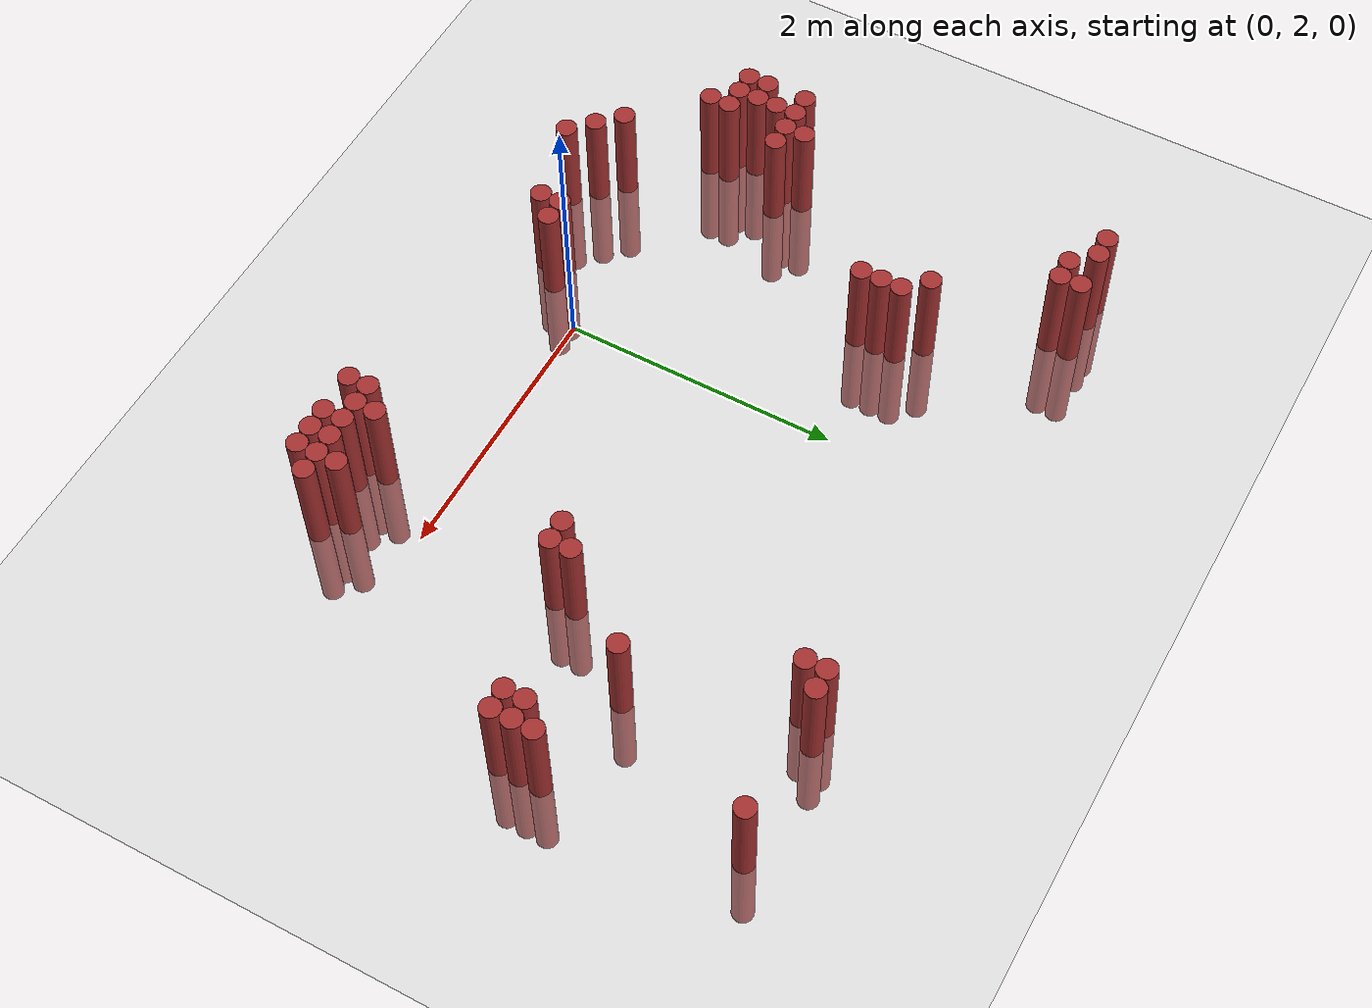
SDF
<sdf version="1.6">
 <world name="default">
  <model name="ground_plane">
   <static>1</static>
   <link name="link">
    <collision name="collision">
     <geometry><plane><normal>0 0 1</normal><size>100 100</size></plane></geometry>
     <surface><friction><ode><mu>100</mu><mu2>50</mu2></ode></friction></surface>
    </collision>
    <visual name="visual">
     <cast_shadows>0</cast_shadows>
     <geometry><plane><normal>0 0 1</normal><size>100 100</size></plane></geometry>
     <material>
      <script><uri>file://media/materials/scripts/gazebo.material</uri><name>Gazebo/Grey</name></script>
     </material>
    </visual>
   </link>
  </model>
  <model name="unit_cylinder_318">
   <static>1</static>
   <pose>-2.075000 2.275000 0.000000 0.000000 0.000000 0.000000</pose>
   <link name="link">
    <inertial>
     <mass>1</mass>
     <inertia><ixx>0.145833</ixx><ixy>0</ixy><ixz>0</ixz><iyy>0.145833</iyy><iyz>0</iyz><izz>0.125</izz></inertia>
    </inertial>
    <collision name="collision">
     <geometry><cylinder><radius>0.075000</radius><length>1.5</length></cylinder></geometry>
    </collision>
    <visual name="visual">
     <geometry><cylinder><radius>0.075000</radius><length>1.5</length></cylinder></geometry>
     <material>
      <ambient>0.648000 0.192000 0.192000 1</ambient>
      <diffuse>0.648000 0.192000 0.192000 1</diffuse>
     </material>
     <material>
      <script><name>Gazebo/Grey</name><uri>file://media/materials/scripts/gazebo.material</uri></script>
     </material>
    </visual>
   </link>
  </model>
  <model name="unit_cylinder_319">
   <static>1</static>
   <pose>-2.075000 2.425000 0.000000 0.000000 0.000000 0.000000</pose>
   <link name="link">
    <inertial>
     <mass>1</mass>
     <inertia><ixx>0.145833</ixx><ixy>0</ixy><ixz>0</ixz><iyy>0.145833</iyy><iyz>0</iyz><izz>0.125</izz></inertia>
    </inertial>
    <collision name="collision">
     <geometry><cylinder><radius>0.075000</radius><length>1.5</length></cylinder></geometry>
    </collision>
    <visual name="visual">
     <geometry><cylinder><radius>0.075000</radius><length>1.5</length></cylinder></geometry>
     <material>
      <ambient>0.648000 0.192000 0.192000 1</ambient>
      <diffuse>0.648000 0.192000 0.192000 1</diffuse>
     </material>
     <material>
      <script><name>Gazebo/Grey</name><uri>file://media/materials/scripts/gazebo.material</uri></script>
     </material>
    </visual>
   </link>
  </model>
  <model name="unit_cylinder_320">
   <static>1</static>
   <pose>-2.075000 2.725000 0.000000 0.000000 0.000000 0.000000</pose>
   <link name="link">
    <inertial>
     <mass>1</mass>
     <inertia><ixx>0.145833</ixx><ixy>0</ixy><ixz>0</ixz><iyy>0.145833</iyy><iyz>0</iyz><izz>0.125</izz></inertia>
    </inertial>
    <collision name="collision">
     <geometry><cylinder><radius>0.075000</radius><length>1.5</length></cylinder></geometry>
    </collision>
    <visual name="visual">
     <geometry><cylinder><radius>0.075000</radius><length>1.5</length></cylinder></geometry>
     <material>
      <ambient>0.648000 0.192000 0.192000 1</ambient>
      <diffuse>0.648000 0.192000 0.192000 1</diffuse>
     </material>
     <material>
      <script><name>Gazebo/Grey</name><uri>file://media/materials/scripts/gazebo.material</uri></script>
     </material>
    </visual>
   </link>
  </model>
  <model name="unit_cylinder_328">
   <static>1</static>
   <pose>-1.925000 2.275000 0.000000 0.000000 0.000000 0.000000</pose>
   <link name="link">
    <inertial>
     <mass>1</mass>
     <inertia><ixx>0.145833</ixx><ixy>0</ixy><ixz>0</ixz><iyy>0.145833</iyy><iyz>0</iyz><izz>0.125</izz></inertia>
    </inertial>
    <collision name="collision">
     <geometry><cylinder><radius>0.075000</radius><length>1.5</length></cylinder></geometry>
    </collision>
    <visual name="visual">
     <geometry><cylinder><radius>0.075000</radius><length>1.5</length></cylinder></geometry>
     <material>
      <ambient>0.648000 0.192000 0.192000 1</ambient>
      <diffuse>0.648000 0.192000 0.192000 1</diffuse>
     </material>
     <material>
      <script><name>Gazebo/Grey</name><uri>file://media/materials/scripts/gazebo.material</uri></script>
     </material>
    </visual>
   </link>
  </model>
  <model name="unit_cylinder_329">
   <static>1</static>
   <pose>-1.925000 2.425000 0.000000 0.000000 0.000000 0.000000</pose>
   <link name="link">
    <inertial>
     <mass>1</mass>
     <inertia><ixx>0.145833</ixx><ixy>0</ixy><ixz>0</ixz><iyy>0.145833</iyy><iyz>0</iyz><izz>0.125</izz></inertia>
    </inertial>
    <collision name="collision">
     <geometry><cylinder><radius>0.075000</radius><length>1.5</length></cylinder></geometry>
    </collision>
    <visual name="visual">
     <geometry><cylinder><radius>0.075000</radius><length>1.5</length></cylinder></geometry>
     <material>
      <ambient>0.648000 0.192000 0.192000 1</ambient>
      <diffuse>0.648000 0.192000 0.192000 1</diffuse>
     </material>
     <material>
      <script><name>Gazebo/Grey</name><uri>file://media/materials/scripts/gazebo.material</uri></script>
     </material>
    </visual>
   </link>
  </model>
  <model name="unit_cylinder_330">
   <static>1</static>
   <pose>-1.925000 2.575000 0.000000 0.000000 0.000000 0.000000</pose>
   <link name="link">
    <inertial>
     <mass>1</mass>
     <inertia><ixx>0.145833</ixx><ixy>0</ixy><ixz>0</ixz><iyy>0.145833</iyy><iyz>0</iyz><izz>0.125</izz></inertia>
    </inertial>
    <collision name="collision">
     <geometry><cylinder><radius>0.075000</radius><length>1.5</length></cylinder></geometry>
    </collision>
    <visual name="visual">
     <geometry><cylinder><radius>0.075000</radius><length>1.5</length></cylinder></geometry>
     <material>
      <ambient>0.648000 0.192000 0.192000 1</ambient>
      <diffuse>0.648000 0.192000 0.192000 1</diffuse>
     </material>
     <material>
      <script><name>Gazebo/Grey</name><uri>file://media/materials/scripts/gazebo.material</uri></script>
     </material>
    </visual>
   </link>
  </model>
  <model name="unit_cylinder_331">
   <static>1</static>
   <pose>-1.925000 2.725000 0.000000 0.000000 0.000000 0.000000</pose>
   <link name="link">
    <inertial>
     <mass>1</mass>
     <inertia><ixx>0.145833</ixx><ixy>0</ixy><ixz>0</ixz><iyy>0.145833</iyy><iyz>0</iyz><izz>0.125</izz></inertia>
    </inertial>
    <collision name="collision">
     <geometry><cylinder><radius>0.075000</radius><length>1.5</length></cylinder></geometry>
    </collision>
    <visual name="visual">
     <geometry><cylinder><radius>0.075000</radius><length>1.5</length></cylinder></geometry>
     <material>
      <ambient>0.648000 0.192000 0.192000 1</ambient>
      <diffuse>0.648000 0.192000 0.192000 1</diffuse>
     </material>
     <material>
      <script><name>Gazebo/Grey</name><uri>file://media/materials/scripts/gazebo.material</uri></script>
     </material>
    </visual>
   </link>
  </model>
  <model name="unit_cylinder_332">
   <static>1</static>
   <pose>-1.925000 5.125000 0.000000 0.000000 0.000000 0.000000</pose>
   <link name="link">
    <inertial>
     <mass>1</mass>
     <inertia><ixx>0.145833</ixx><ixy>0</ixy><ixz>0</ixz><iyy>0.145833</iyy><iyz>0</iyz><izz>0.125</izz></inertia>
    </inertial>
    <collision name="collision">
     <geometry><cylinder><radius>0.075000</radius><length>1.5</length></cylinder></geometry>
    </collision>
    <visual name="visual">
     <geometry><cylinder><radius>0.075000</radius><length>1.5</length></cylinder></geometry>
     <material>
      <ambient>0.648000 0.192000 0.192000 1</ambient>
      <diffuse>0.648000 0.192000 0.192000 1</diffuse>
     </material>
     <material>
      <script><name>Gazebo/Grey</name><uri>file://media/materials/scripts/gazebo.material</uri></script>
     </material>
    </visual>
   </link>
  </model>
  <model name="unit_cylinder_336">
   <static>1</static>
   <pose>-1.775000 2.125000 0.000000 0.000000 0.000000 0.000000</pose>
   <link name="link">
    <inertial>
     <mass>1</mass>
     <inertia><ixx>0.145833</ixx><ixy>0</ixy><ixz>0</ixz><iyy>0.145833</iyy><iyz>0</iyz><izz>0.125</izz></inertia>
    </inertial>
    <collision name="collision">
     <geometry><cylinder><radius>0.075000</radius><length>1.5</length></cylinder></geometry>
    </collision>
    <visual name="visual">
     <geometry><cylinder><radius>0.075000</radius><length>1.5</length></cylinder></geometry>
     <material>
      <ambient>0.648000 0.192000 0.192000 1</ambient>
      <diffuse>0.648000 0.192000 0.192000 1</diffuse>
     </material>
     <material>
      <script><name>Gazebo/Grey</name><uri>file://media/materials/scripts/gazebo.material</uri></script>
     </material>
    </visual>
   </link>
  </model>
  <model name="unit_cylinder_337">
   <static>1</static>
   <pose>-1.775000 2.275000 0.000000 0.000000 0.000000 0.000000</pose>
   <link name="link">
    <inertial>
     <mass>1</mass>
     <inertia><ixx>0.145833</ixx><ixy>0</ixy><ixz>0</ixz><iyy>0.145833</iyy><iyz>0</iyz><izz>0.125</izz></inertia>
    </inertial>
    <collision name="collision">
     <geometry><cylinder><radius>0.075000</radius><length>1.5</length></cylinder></geometry>
    </collision>
    <visual name="visual">
     <geometry><cylinder><radius>0.075000</radius><length>1.5</length></cylinder></geometry>
     <material>
      <ambient>0.648000 0.192000 0.192000 1</ambient>
      <diffuse>0.648000 0.192000 0.192000 1</diffuse>
     </material>
     <material>
      <script><name>Gazebo/Grey</name><uri>file://media/materials/scripts/gazebo.material</uri></script>
     </material>
    </visual>
   </link>
  </model>
  <model name="unit_cylinder_338">
   <static>1</static>
   <pose>-1.775000 2.725000 0.000000 0.000000 0.000000 0.000000</pose>
   <link name="link">
    <inertial>
     <mass>1</mass>
     <inertia><ixx>0.145833</ixx><ixy>0</ixy><ixz>0</ixz><iyy>0.145833</iyy><iyz>0</iyz><izz>0.125</izz></inertia>
    </inertial>
    <collision name="collision">
     <geometry><cylinder><radius>0.075000</radius><length>1.5</length></cylinder></geometry>
    </collision>
    <visual name="visual">
     <geometry><cylinder><radius>0.075000</radius><length>1.5</length></cylinder></geometry>
     <material>
      <ambient>0.648000 0.192000 0.192000 1</ambient>
      <diffuse>0.648000 0.192000 0.192000 1</diffuse>
     </material>
     <material>
      <script><name>Gazebo/Grey</name><uri>file://media/materials/scripts/gazebo.material</uri></script>
     </material>
    </visual>
   </link>
  </model>
  <model name="unit_cylinder_339">
   <static>1</static>
   <pose>-1.775000 2.875000 0.000000 0.000000 0.000000 0.000000</pose>
   <link name="link">
    <inertial>
     <mass>1</mass>
     <inertia><ixx>0.145833</ixx><ixy>0</ixy><ixz>0</ixz><iyy>0.145833</iyy><iyz>0</iyz><izz>0.125</izz></inertia>
    </inertial>
    <collision name="collision">
     <geometry><cylinder><radius>0.075000</radius><length>1.5</length></cylinder></geometry>
    </collision>
    <visual name="visual">
     <geometry><cylinder><radius>0.075000</radius><length>1.5</length></cylinder></geometry>
     <material>
      <ambient>0.648000 0.192000 0.192000 1</ambient>
      <diffuse>0.648000 0.192000 0.192000 1</diffuse>
     </material>
     <material>
      <script><name>Gazebo/Grey</name><uri>file://media/materials/scripts/gazebo.material</uri></script>
     </material>
    </visual>
   </link>
  </model>
  <model name="unit_cylinder_340">
   <static>1</static>
   <pose>-1.775000 5.125000 0.000000 0.000000 0.000000 0.000000</pose>
   <link name="link">
    <inertial>
     <mass>1</mass>
     <inertia><ixx>0.145833</ixx><ixy>0</ixy><ixz>0</ixz><iyy>0.145833</iyy><iyz>0</iyz><izz>0.125</izz></inertia>
    </inertial>
    <collision name="collision">
     <geometry><cylinder><radius>0.075000</radius><length>1.5</length></cylinder></geometry>
    </collision>
    <visual name="visual">
     <geometry><cylinder><radius>0.075000</radius><length>1.5</length></cylinder></geometry>
     <material>
      <ambient>0.648000 0.192000 0.192000 1</ambient>
      <diffuse>0.648000 0.192000 0.192000 1</diffuse>
     </material>
     <material>
      <script><name>Gazebo/Grey</name><uri>file://media/materials/scripts/gazebo.material</uri></script>
     </material>
    </visual>
   </link>
  </model>
  <model name="unit_cylinder_341">
   <static>1</static>
   <pose>-1.625000 2.725000 0.000000 0.000000 0.000000 0.000000</pose>
   <link name="link">
    <inertial>
     <mass>1</mass>
     <inertia><ixx>0.145833</ixx><ixy>0</ixy><ixz>0</ixz><iyy>0.145833</iyy><iyz>0</iyz><izz>0.125</izz></inertia>
    </inertial>
    <collision name="collision">
     <geometry><cylinder><radius>0.075000</radius><length>1.5</length></cylinder></geometry>
    </collision>
    <visual name="visual">
     <geometry><cylinder><radius>0.075000</radius><length>1.5</length></cylinder></geometry>
     <material>
      <ambient>0.648000 0.192000 0.192000 1</ambient>
      <diffuse>0.648000 0.192000 0.192000 1</diffuse>
     </material>
     <material>
      <script><name>Gazebo/Grey</name><uri>file://media/materials/scripts/gazebo.material</uri></script>
     </material>
    </visual>
   </link>
  </model>
  <model name="unit_cylinder_342">
   <static>1</static>
   <pose>-1.625000 4.975000 0.000000 0.000000 0.000000 0.000000</pose>
   <link name="link">
    <inertial>
     <mass>1</mass>
     <inertia><ixx>0.145833</ixx><ixy>0</ixy><ixz>0</ixz><iyy>0.145833</iyy><iyz>0</iyz><izz>0.125</izz></inertia>
    </inertial>
    <collision name="collision">
     <geometry><cylinder><radius>0.075000</radius><length>1.5</length></cylinder></geometry>
    </collision>
    <visual name="visual">
     <geometry><cylinder><radius>0.075000</radius><length>1.5</length></cylinder></geometry>
     <material>
      <ambient>0.648000 0.192000 0.192000 1</ambient>
      <diffuse>0.648000 0.192000 0.192000 1</diffuse>
     </material>
     <material>
      <script><name>Gazebo/Grey</name><uri>file://media/materials/scripts/gazebo.material</uri></script>
     </material>
    </visual>
   </link>
  </model>
  <model name="unit_cylinder_343">
   <static>1</static>
   <pose>-1.475000 4.975000 0.000000 0.000000 0.000000 0.000000</pose>
   <link name="link">
    <inertial>
     <mass>1</mass>
     <inertia><ixx>0.145833</ixx><ixy>0</ixy><ixz>0</ixz><iyy>0.145833</iyy><iyz>0</iyz><izz>0.125</izz></inertia>
    </inertial>
    <collision name="collision">
     <geometry><cylinder><radius>0.075000</radius><length>1.5</length></cylinder></geometry>
    </collision>
    <visual name="visual">
     <geometry><cylinder><radius>0.075000</radius><length>1.5</length></cylinder></geometry>
     <material>
      <ambient>0.648000 0.192000 0.192000 1</ambient>
      <diffuse>0.648000 0.192000 0.192000 1</diffuse>
     </material>
     <material>
      <script><name>Gazebo/Grey</name><uri>file://media/materials/scripts/gazebo.material</uri></script>
     </material>
    </visual>
   </link>
  </model>
  <model name="unit_cylinder_344">
   <static>1</static>
   <pose>-1.475000 5.125000 0.000000 0.000000 0.000000 0.000000</pose>
   <link name="link">
    <inertial>
     <mass>1</mass>
     <inertia><ixx>0.145833</ixx><ixy>0</ixy><ixz>0</ixz><iyy>0.145833</iyy><iyz>0</iyz><izz>0.125</izz></inertia>
    </inertial>
    <collision name="collision">
     <geometry><cylinder><radius>0.075000</radius><length>1.5</length></cylinder></geometry>
    </collision>
    <visual name="visual">
     <geometry><cylinder><radius>0.075000</radius><length>1.5</length></cylinder></geometry>
     <material>
      <ambient>0.648000 0.192000 0.192000 1</ambient>
      <diffuse>0.648000 0.192000 0.192000 1</diffuse>
     </material>
     <material>
      <script><name>Gazebo/Grey</name><uri>file://media/materials/scripts/gazebo.material</uri></script>
     </material>
    </visual>
   </link>
  </model>
  <model name="unit_cylinder_345">
   <static>1</static>
   <pose>-1.325000 1.675000 0.000000 0.000000 0.000000 0.000000</pose>
   <link name="link">
    <inertial>
     <mass>1</mass>
     <inertia><ixx>0.145833</ixx><ixy>0</ixy><ixz>0</ixz><iyy>0.145833</iyy><iyz>0</iyz><izz>0.125</izz></inertia>
    </inertial>
    <collision name="collision">
     <geometry><cylinder><radius>0.075000</radius><length>1.5</length></cylinder></geometry>
    </collision>
    <visual name="visual">
     <geometry><cylinder><radius>0.075000</radius><length>1.5</length></cylinder></geometry>
     <material>
      <ambient>0.648000 0.192000 0.192000 1</ambient>
      <diffuse>0.648000 0.192000 0.192000 1</diffuse>
     </material>
     <material>
      <script><name>Gazebo/Grey</name><uri>file://media/materials/scripts/gazebo.material</uri></script>
     </material>
    </visual>
   </link>
  </model>
  <model name="unit_cylinder_346">
   <static>1</static>
   <pose>-1.175000 1.525000 0.000000 0.000000 0.000000 0.000000</pose>
   <link name="link">
    <inertial>
     <mass>1</mass>
     <inertia><ixx>0.145833</ixx><ixy>0</ixy><ixz>0</ixz><iyy>0.145833</iyy><iyz>0</iyz><izz>0.125</izz></inertia>
    </inertial>
    <collision name="collision">
     <geometry><cylinder><radius>0.075000</radius><length>1.5</length></cylinder></geometry>
    </collision>
    <visual name="visual">
     <geometry><cylinder><radius>0.075000</radius><length>1.5</length></cylinder></geometry>
     <material>
      <ambient>0.648000 0.192000 0.192000 1</ambient>
      <diffuse>0.648000 0.192000 0.192000 1</diffuse>
     </material>
     <material>
      <script><name>Gazebo/Grey</name><uri>file://media/materials/scripts/gazebo.material</uri></script>
     </material>
    </visual>
   </link>
  </model>
  <model name="unit_cylinder_348">
   <static>1</static>
   <pose>-1.025000 1.375000 0.000000 0.000000 0.000000 0.000000</pose>
   <link name="link">
    <inertial>
     <mass>1</mass>
     <inertia><ixx>0.145833</ixx><ixy>0</ixy><ixz>0</ixz><iyy>0.145833</iyy><iyz>0</iyz><izz>0.125</izz></inertia>
    </inertial>
    <collision name="collision">
     <geometry><cylinder><radius>0.075000</radius><length>1.5</length></cylinder></geometry>
    </collision>
    <visual name="visual">
     <geometry><cylinder><radius>0.075000</radius><length>1.5</length></cylinder></geometry>
     <material>
      <ambient>0.648000 0.192000 0.192000 1</ambient>
      <diffuse>0.648000 0.192000 0.192000 1</diffuse>
     </material>
     <material>
      <script><name>Gazebo/Grey</name><uri>file://media/materials/scripts/gazebo.material</uri></script>
     </material>
    </visual>
   </link>
  </model>
  <model name="unit_cylinder_349">
   <static>1</static>
   <pose>-1.025000 4.225000 0.000000 0.000000 0.000000 0.000000</pose>
   <link name="link">
    <inertial>
     <mass>1</mass>
     <inertia><ixx>0.145833</ixx><ixy>0</ixy><ixz>0</ixz><iyy>0.145833</iyy><iyz>0</iyz><izz>0.125</izz></inertia>
    </inertial>
    <collision name="collision">
     <geometry><cylinder><radius>0.075000</radius><length>1.5</length></cylinder></geometry>
    </collision>
    <visual name="visual">
     <geometry><cylinder><radius>0.075000</radius><length>1.5</length></cylinder></geometry>
     <material>
      <ambient>0.648000 0.192000 0.192000 1</ambient>
      <diffuse>0.648000 0.192000 0.192000 1</diffuse>
     </material>
     <material>
      <script><name>Gazebo/Grey</name><uri>file://media/materials/scripts/gazebo.material</uri></script>
     </material>
    </visual>
   </link>
  </model>
  <model name="unit_cylinder_352">
   <static>1</static>
   <pose>-0.875000 3.775000 0.000000 0.000000 0.000000 0.000000</pose>
   <link name="link">
    <inertial>
     <mass>1</mass>
     <inertia><ixx>0.145833</ixx><ixy>0</ixy><ixz>0</ixz><iyy>0.145833</iyy><iyz>0</iyz><izz>0.125</izz></inertia>
    </inertial>
    <collision name="collision">
     <geometry><cylinder><radius>0.075000</radius><length>1.5</length></cylinder></geometry>
    </collision>
    <visual name="visual">
     <geometry><cylinder><radius>0.075000</radius><length>1.5</length></cylinder></geometry>
     <material>
      <ambient>0.648000 0.192000 0.192000 1</ambient>
      <diffuse>0.648000 0.192000 0.192000 1</diffuse>
     </material>
     <material>
      <script><name>Gazebo/Grey</name><uri>file://media/materials/scripts/gazebo.material</uri></script>
     </material>
    </visual>
   </link>
  </model>
  <model name="unit_cylinder_353">
   <static>1</static>
   <pose>-0.875000 3.925000 0.000000 0.000000 0.000000 0.000000</pose>
   <link name="link">
    <inertial>
     <mass>1</mass>
     <inertia><ixx>0.145833</ixx><ixy>0</ixy><ixz>0</ixz><iyy>0.145833</iyy><iyz>0</iyz><izz>0.125</izz></inertia>
    </inertial>
    <collision name="collision">
     <geometry><cylinder><radius>0.075000</radius><length>1.5</length></cylinder></geometry>
    </collision>
    <visual name="visual">
     <geometry><cylinder><radius>0.075000</radius><length>1.5</length></cylinder></geometry>
     <material>
      <ambient>0.648000 0.192000 0.192000 1</ambient>
      <diffuse>0.648000 0.192000 0.192000 1</diffuse>
     </material>
     <material>
      <script><name>Gazebo/Grey</name><uri>file://media/materials/scripts/gazebo.material</uri></script>
     </material>
    </visual>
   </link>
  </model>
  <model name="unit_cylinder_354">
   <static>1</static>
   <pose>-0.875000 4.075000 0.000000 0.000000 0.000000 0.000000</pose>
   <link name="link">
    <inertial>
     <mass>1</mass>
     <inertia><ixx>0.145833</ixx><ixy>0</ixy><ixz>0</ixz><iyy>0.145833</iyy><iyz>0</iyz><izz>0.125</izz></inertia>
    </inertial>
    <collision name="collision">
     <geometry><cylinder><radius>0.075000</radius><length>1.5</length></cylinder></geometry>
    </collision>
    <visual name="visual">
     <geometry><cylinder><radius>0.075000</radius><length>1.5</length></cylinder></geometry>
     <material>
      <ambient>0.648000 0.192000 0.192000 1</ambient>
      <diffuse>0.648000 0.192000 0.192000 1</diffuse>
     </material>
     <material>
      <script><name>Gazebo/Grey</name><uri>file://media/materials/scripts/gazebo.material</uri></script>
     </material>
    </visual>
   </link>
  </model>
  <model name="unit_cylinder_358">
   <static>1</static>
   <pose>-0.425000 1.525000 0.000000 0.000000 0.000000 0.000000</pose>
   <link name="link">
    <inertial>
     <mass>1</mass>
     <inertia><ixx>0.145833</ixx><ixy>0</ixy><ixz>0</ixz><iyy>0.145833</iyy><iyz>0</iyz><izz>0.125</izz></inertia>
    </inertial>
    <collision name="collision">
     <geometry><cylinder><radius>0.075000</radius><length>1.5</length></cylinder></geometry>
    </collision>
    <visual name="visual">
     <geometry><cylinder><radius>0.075000</radius><length>1.5</length></cylinder></geometry>
     <material>
      <ambient>0.648000 0.192000 0.192000 1</ambient>
      <diffuse>0.648000 0.192000 0.192000 1</diffuse>
     </material>
     <material>
      <script><name>Gazebo/Grey</name><uri>file://media/materials/scripts/gazebo.material</uri></script>
     </material>
    </visual>
   </link>
  </model>
  <model name="unit_cylinder_359">
   <static>1</static>
   <pose>-0.425000 1.675000 0.000000 0.000000 0.000000 0.000000</pose>
   <link name="link">
    <inertial>
     <mass>1</mass>
     <inertia><ixx>0.145833</ixx><ixy>0</ixy><ixz>0</ixz><iyy>0.145833</iyy><iyz>0</iyz><izz>0.125</izz></inertia>
    </inertial>
    <collision name="collision">
     <geometry><cylinder><radius>0.075000</radius><length>1.5</length></cylinder></geometry>
    </collision>
    <visual name="visual">
     <geometry><cylinder><radius>0.075000</radius><length>1.5</length></cylinder></geometry>
     <material>
      <ambient>0.648000 0.192000 0.192000 1</ambient>
      <diffuse>0.648000 0.192000 0.192000 1</diffuse>
     </material>
     <material>
      <script><name>Gazebo/Grey</name><uri>file://media/materials/scripts/gazebo.material</uri></script>
     </material>
    </visual>
   </link>
  </model>
  <model name="unit_cylinder_362">
   <static>1</static>
   <pose>-0.275000 1.675000 0.000000 0.000000 0.000000 0.000000</pose>
   <link name="link">
    <inertial>
     <mass>1</mass>
     <inertia><ixx>0.145833</ixx><ixy>0</ixy><ixz>0</ixz><iyy>0.145833</iyy><iyz>0</iyz><izz>0.125</izz></inertia>
    </inertial>
    <collision name="collision">
     <geometry><cylinder><radius>0.075000</radius><length>1.5</length></cylinder></geometry>
    </collision>
    <visual name="visual">
     <geometry><cylinder><radius>0.075000</radius><length>1.5</length></cylinder></geometry>
     <material>
      <ambient>0.648000 0.192000 0.192000 1</ambient>
      <diffuse>0.648000 0.192000 0.192000 1</diffuse>
     </material>
     <material>
      <script><name>Gazebo/Grey</name><uri>file://media/materials/scripts/gazebo.material</uri></script>
     </material>
    </visual>
   </link>
  </model>
  <model name="unit_cylinder_386">
   <static>1</static>
   <pose>1.525000 1.225000 0.000000 0.000000 0.000000 0.000000</pose>
   <link name="link">
    <inertial>
     <mass>1</mass>
     <inertia><ixx>0.145833</ixx><ixy>0</ixy><ixz>0</ixz><iyy>0.145833</iyy><iyz>0</iyz><izz>0.125</izz></inertia>
    </inertial>
    <collision name="collision">
     <geometry><cylinder><radius>0.075000</radius><length>1.5</length></cylinder></geometry>
    </collision>
    <visual name="visual">
     <geometry><cylinder><radius>0.075000</radius><length>1.5</length></cylinder></geometry>
     <material>
      <ambient>0.648000 0.192000 0.192000 1</ambient>
      <diffuse>0.648000 0.192000 0.192000 1</diffuse>
     </material>
     <material>
      <script><name>Gazebo/Grey</name><uri>file://media/materials/scripts/gazebo.material</uri></script>
     </material>
    </visual>
   </link>
  </model>
  <model name="unit_cylinder_387">
   <static>1</static>
   <pose>1.525000 1.375000 0.000000 0.000000 0.000000 0.000000</pose>
   <link name="link">
    <inertial>
     <mass>1</mass>
     <inertia><ixx>0.145833</ixx><ixy>0</ixy><ixz>0</ixz><iyy>0.145833</iyy><iyz>0</iyz><izz>0.125</izz></inertia>
    </inertial>
    <collision name="collision">
     <geometry><cylinder><radius>0.075000</radius><length>1.5</length></cylinder></geometry>
    </collision>
    <visual name="visual">
     <geometry><cylinder><radius>0.075000</radius><length>1.5</length></cylinder></geometry>
     <material>
      <ambient>0.648000 0.192000 0.192000 1</ambient>
      <diffuse>0.648000 0.192000 0.192000 1</diffuse>
     </material>
     <material>
      <script><name>Gazebo/Grey</name><uri>file://media/materials/scripts/gazebo.material</uri></script>
     </material>
    </visual>
   </link>
  </model>
  <model name="unit_cylinder_389">
   <static>1</static>
   <pose>1.675000 1.375000 0.000000 0.000000 0.000000 0.000000</pose>
   <link name="link">
    <inertial>
     <mass>1</mass>
     <inertia><ixx>0.145833</ixx><ixy>0</ixy><ixz>0</ixz><iyy>0.145833</iyy><iyz>0</iyz><izz>0.125</izz></inertia>
    </inertial>
    <collision name="collision">
     <geometry><cylinder><radius>0.075000</radius><length>1.5</length></cylinder></geometry>
    </collision>
    <visual name="visual">
     <geometry><cylinder><radius>0.075000</radius><length>1.5</length></cylinder></geometry>
     <material>
      <ambient>0.648000 0.192000 0.192000 1</ambient>
      <diffuse>0.648000 0.192000 0.192000 1</diffuse>
     </material>
     <material>
      <script><name>Gazebo/Grey</name><uri>file://media/materials/scripts/gazebo.material</uri></script>
     </material>
    </visual>
   </link>
  </model>
  <model name="unit_cylinder_390">
   <static>1</static>
   <pose>1.675000 1.525000 0.000000 0.000000 0.000000 0.000000</pose>
   <link name="link">
    <inertial>
     <mass>1</mass>
     <inertia><ixx>0.145833</ixx><ixy>0</ixy><ixz>0</ixz><iyy>0.145833</iyy><iyz>0</iyz><izz>0.125</izz></inertia>
    </inertial>
    <collision name="collision">
     <geometry><cylinder><radius>0.075000</radius><length>1.5</length></cylinder></geometry>
    </collision>
    <visual name="visual">
     <geometry><cylinder><radius>0.075000</radius><length>1.5</length></cylinder></geometry>
     <material>
      <ambient>0.648000 0.192000 0.192000 1</ambient>
      <diffuse>0.648000 0.192000 0.192000 1</diffuse>
     </material>
     <material>
      <script><name>Gazebo/Grey</name><uri>file://media/materials/scripts/gazebo.material</uri></script>
     </material>
    </visual>
   </link>
  </model>
  <model name="unit_cylinder_391">
   <static>1</static>
   <pose>1.825000 1.225000 0.000000 0.000000 0.000000 0.000000</pose>
   <link name="link">
    <inertial>
     <mass>1</mass>
     <inertia><ixx>0.145833</ixx><ixy>0</ixy><ixz>0</ixz><iyy>0.145833</iyy><iyz>0</iyz><izz>0.125</izz></inertia>
    </inertial>
    <collision name="collision">
     <geometry><cylinder><radius>0.075000</radius><length>1.5</length></cylinder></geometry>
    </collision>
    <visual name="visual">
     <geometry><cylinder><radius>0.075000</radius><length>1.5</length></cylinder></geometry>
     <material>
      <ambient>0.648000 0.192000 0.192000 1</ambient>
      <diffuse>0.648000 0.192000 0.192000 1</diffuse>
     </material>
     <material>
      <script><name>Gazebo/Grey</name><uri>file://media/materials/scripts/gazebo.material</uri></script>
     </material>
    </visual>
   </link>
  </model>
  <model name="unit_cylinder_392">
   <static>1</static>
   <pose>1.825000 1.375000 0.000000 0.000000 0.000000 0.000000</pose>
   <link name="link">
    <inertial>
     <mass>1</mass>
     <inertia><ixx>0.145833</ixx><ixy>0</ixy><ixz>0</ixz><iyy>0.145833</iyy><iyz>0</iyz><izz>0.125</izz></inertia>
    </inertial>
    <collision name="collision">
     <geometry><cylinder><radius>0.075000</radius><length>1.5</length></cylinder></geometry>
    </collision>
    <visual name="visual">
     <geometry><cylinder><radius>0.075000</radius><length>1.5</length></cylinder></geometry>
     <material>
      <ambient>0.648000 0.192000 0.192000 1</ambient>
      <diffuse>0.648000 0.192000 0.192000 1</diffuse>
     </material>
     <material>
      <script><name>Gazebo/Grey</name><uri>file://media/materials/scripts/gazebo.material</uri></script>
     </material>
    </visual>
   </link>
  </model>
  <model name="unit_cylinder_393">
   <static>1</static>
   <pose>1.825000 3.025000 0.000000 0.000000 0.000000 0.000000</pose>
   <link name="link">
    <inertial>
     <mass>1</mass>
     <inertia><ixx>0.145833</ixx><ixy>0</ixy><ixz>0</ixz><iyy>0.145833</iyy><iyz>0</iyz><izz>0.125</izz></inertia>
    </inertial>
    <collision name="collision">
     <geometry><cylinder><radius>0.075000</radius><length>1.5</length></cylinder></geometry>
    </collision>
    <visual name="visual">
     <geometry><cylinder><radius>0.075000</radius><length>1.5</length></cylinder></geometry>
     <material>
      <ambient>0.648000 0.192000 0.192000 1</ambient>
      <diffuse>0.648000 0.192000 0.192000 1</diffuse>
     </material>
     <material>
      <script><name>Gazebo/Grey</name><uri>file://media/materials/scripts/gazebo.material</uri></script>
     </material>
    </visual>
   </link>
  </model>
  <model name="unit_cylinder_395">
   <static>1</static>
   <pose>1.975000 1.225000 0.000000 0.000000 0.000000 0.000000</pose>
   <link name="link">
    <inertial>
     <mass>1</mass>
     <inertia><ixx>0.145833</ixx><ixy>0</ixy><ixz>0</ixz><iyy>0.145833</iyy><iyz>0</iyz><izz>0.125</izz></inertia>
    </inertial>
    <collision name="collision">
     <geometry><cylinder><radius>0.075000</radius><length>1.5</length></cylinder></geometry>
    </collision>
    <visual name="visual">
     <geometry><cylinder><radius>0.075000</radius><length>1.5</length></cylinder></geometry>
     <material>
      <ambient>0.648000 0.192000 0.192000 1</ambient>
      <diffuse>0.648000 0.192000 0.192000 1</diffuse>
     </material>
     <material>
      <script><name>Gazebo/Grey</name><uri>file://media/materials/scripts/gazebo.material</uri></script>
     </material>
    </visual>
   </link>
  </model>
  <model name="unit_cylinder_396">
   <static>1</static>
   <pose>1.975000 1.375000 0.000000 0.000000 0.000000 0.000000</pose>
   <link name="link">
    <inertial>
     <mass>1</mass>
     <inertia><ixx>0.145833</ixx><ixy>0</ixy><ixz>0</ixz><iyy>0.145833</iyy><iyz>0</iyz><izz>0.125</izz></inertia>
    </inertial>
    <collision name="collision">
     <geometry><cylinder><radius>0.075000</radius><length>1.5</length></cylinder></geometry>
    </collision>
    <visual name="visual">
     <geometry><cylinder><radius>0.075000</radius><length>1.5</length></cylinder></geometry>
     <material>
      <ambient>0.648000 0.192000 0.192000 1</ambient>
      <diffuse>0.648000 0.192000 0.192000 1</diffuse>
     </material>
     <material>
      <script><name>Gazebo/Grey</name><uri>file://media/materials/scripts/gazebo.material</uri></script>
     </material>
    </visual>
   </link>
  </model>
  <model name="unit_cylinder_397">
   <static>1</static>
   <pose>1.975000 3.025000 0.000000 0.000000 0.000000 0.000000</pose>
   <link name="link">
    <inertial>
     <mass>1</mass>
     <inertia><ixx>0.145833</ixx><ixy>0</ixy><ixz>0</ixz><iyy>0.145833</iyy><iyz>0</iyz><izz>0.125</izz></inertia>
    </inertial>
    <collision name="collision">
     <geometry><cylinder><radius>0.075000</radius><length>1.5</length></cylinder></geometry>
    </collision>
    <visual name="visual">
     <geometry><cylinder><radius>0.075000</radius><length>1.5</length></cylinder></geometry>
     <material>
      <ambient>0.648000 0.192000 0.192000 1</ambient>
      <diffuse>0.648000 0.192000 0.192000 1</diffuse>
     </material>
     <material>
      <script><name>Gazebo/Grey</name><uri>file://media/materials/scripts/gazebo.material</uri></script>
     </material>
    </visual>
   </link>
  </model>
  <model name="unit_cylinder_398">
   <static>1</static>
   <pose>1.975000 3.175000 0.000000 0.000000 0.000000 0.000000</pose>
   <link name="link">
    <inertial>
     <mass>1</mass>
     <inertia><ixx>0.145833</ixx><ixy>0</ixy><ixz>0</ixz><iyy>0.145833</iyy><iyz>0</iyz><izz>0.125</izz></inertia>
    </inertial>
    <collision name="collision">
     <geometry><cylinder><radius>0.075000</radius><length>1.5</length></cylinder></geometry>
    </collision>
    <visual name="visual">
     <geometry><cylinder><radius>0.075000</radius><length>1.5</length></cylinder></geometry>
     <material>
      <ambient>0.648000 0.192000 0.192000 1</ambient>
      <diffuse>0.648000 0.192000 0.192000 1</diffuse>
     </material>
     <material>
      <script><name>Gazebo/Grey</name><uri>file://media/materials/scripts/gazebo.material</uri></script>
     </material>
    </visual>
   </link>
  </model>
  <model name="unit_cylinder_399">
   <static>1</static>
   <pose>1.975000 4.825000 0.000000 0.000000 0.000000 0.000000</pose>
   <link name="link">
    <inertial>
     <mass>1</mass>
     <inertia><ixx>0.145833</ixx><ixy>0</ixy><ixz>0</ixz><iyy>0.145833</iyy><iyz>0</iyz><izz>0.125</izz></inertia>
    </inertial>
    <collision name="collision">
     <geometry><cylinder><radius>0.075000</radius><length>1.5</length></cylinder></geometry>
    </collision>
    <visual name="visual">
     <geometry><cylinder><radius>0.075000</radius><length>1.5</length></cylinder></geometry>
     <material>
      <ambient>0.648000 0.192000 0.192000 1</ambient>
      <diffuse>0.648000 0.192000 0.192000 1</diffuse>
     </material>
     <material>
      <script><name>Gazebo/Grey</name><uri>file://media/materials/scripts/gazebo.material</uri></script>
     </material>
    </visual>
   </link>
  </model>
  <model name="unit_cylinder_400">
   <static>1</static>
   <pose>1.975000 4.975000 0.000000 0.000000 0.000000 0.000000</pose>
   <link name="link">
    <inertial>
     <mass>1</mass>
     <inertia><ixx>0.145833</ixx><ixy>0</ixy><ixz>0</ixz><iyy>0.145833</iyy><iyz>0</iyz><izz>0.125</izz></inertia>
    </inertial>
    <collision name="collision">
     <geometry><cylinder><radius>0.075000</radius><length>1.5</length></cylinder></geometry>
    </collision>
    <visual name="visual">
     <geometry><cylinder><radius>0.075000</radius><length>1.5</length></cylinder></geometry>
     <material>
      <ambient>0.648000 0.192000 0.192000 1</ambient>
      <diffuse>0.648000 0.192000 0.192000 1</diffuse>
     </material>
     <material>
      <script><name>Gazebo/Grey</name><uri>file://media/materials/scripts/gazebo.material</uri></script>
     </material>
    </visual>
   </link>
  </model>
  <model name="unit_cylinder_406">
   <static>1</static>
   <pose>2.125000 1.225000 0.000000 0.000000 0.000000 0.000000</pose>
   <link name="link">
    <inertial>
     <mass>1</mass>
     <inertia><ixx>0.145833</ixx><ixy>0</ixy><ixz>0</ixz><iyy>0.145833</iyy><iyz>0</iyz><izz>0.125</izz></inertia>
    </inertial>
    <collision name="collision">
     <geometry><cylinder><radius>0.075000</radius><length>1.5</length></cylinder></geometry>
    </collision>
    <visual name="visual">
     <geometry><cylinder><radius>0.075000</radius><length>1.5</length></cylinder></geometry>
     <material>
      <ambient>0.648000 0.192000 0.192000 1</ambient>
      <diffuse>0.648000 0.192000 0.192000 1</diffuse>
     </material>
     <material>
      <script><name>Gazebo/Grey</name><uri>file://media/materials/scripts/gazebo.material</uri></script>
     </material>
    </visual>
   </link>
  </model>
  <model name="unit_cylinder_407">
   <static>1</static>
   <pose>2.125000 1.375000 0.000000 0.000000 0.000000 0.000000</pose>
   <link name="link">
    <inertial>
     <mass>1</mass>
     <inertia><ixx>0.145833</ixx><ixy>0</ixy><ixz>0</ixz><iyy>0.145833</iyy><iyz>0</iyz><izz>0.125</izz></inertia>
    </inertial>
    <collision name="collision">
     <geometry><cylinder><radius>0.075000</radius><length>1.5</length></cylinder></geometry>
    </collision>
    <visual name="visual">
     <geometry><cylinder><radius>0.075000</radius><length>1.5</length></cylinder></geometry>
     <material>
      <ambient>0.648000 0.192000 0.192000 1</ambient>
      <diffuse>0.648000 0.192000 0.192000 1</diffuse>
     </material>
     <material>
      <script><name>Gazebo/Grey</name><uri>file://media/materials/scripts/gazebo.material</uri></script>
     </material>
    </visual>
   </link>
  </model>
  <model name="unit_cylinder_408">
   <static>1</static>
   <pose>2.125000 1.525000 0.000000 0.000000 0.000000 0.000000</pose>
   <link name="link">
    <inertial>
     <mass>1</mass>
     <inertia><ixx>0.145833</ixx><ixy>0</ixy><ixz>0</ixz><iyy>0.145833</iyy><iyz>0</iyz><izz>0.125</izz></inertia>
    </inertial>
    <collision name="collision">
     <geometry><cylinder><radius>0.075000</radius><length>1.5</length></cylinder></geometry>
    </collision>
    <visual name="visual">
     <geometry><cylinder><radius>0.075000</radius><length>1.5</length></cylinder></geometry>
     <material>
      <ambient>0.648000 0.192000 0.192000 1</ambient>
      <diffuse>0.648000 0.192000 0.192000 1</diffuse>
     </material>
     <material>
      <script><name>Gazebo/Grey</name><uri>file://media/materials/scripts/gazebo.material</uri></script>
     </material>
    </visual>
   </link>
  </model>
  <model name="unit_cylinder_409">
   <static>1</static>
   <pose>2.125000 4.975000 0.000000 0.000000 0.000000 0.000000</pose>
   <link name="link">
    <inertial>
     <mass>1</mass>
     <inertia><ixx>0.145833</ixx><ixy>0</ixy><ixz>0</ixz><iyy>0.145833</iyy><iyz>0</iyz><izz>0.125</izz></inertia>
    </inertial>
    <collision name="collision">
     <geometry><cylinder><radius>0.075000</radius><length>1.5</length></cylinder></geometry>
    </collision>
    <visual name="visual">
     <geometry><cylinder><radius>0.075000</radius><length>1.5</length></cylinder></geometry>
     <material>
      <ambient>0.648000 0.192000 0.192000 1</ambient>
      <diffuse>0.648000 0.192000 0.192000 1</diffuse>
     </material>
     <material>
      <script><name>Gazebo/Grey</name><uri>file://media/materials/scripts/gazebo.material</uri></script>
     </material>
    </visual>
   </link>
  </model>
  <model name="unit_cylinder_413">
   <static>1</static>
   <pose>2.275000 1.375000 0.000000 0.000000 0.000000 0.000000</pose>
   <link name="link">
    <inertial>
     <mass>1</mass>
     <inertia><ixx>0.145833</ixx><ixy>0</ixy><ixz>0</ixz><iyy>0.145833</iyy><iyz>0</iyz><izz>0.125</izz></inertia>
    </inertial>
    <collision name="collision">
     <geometry><cylinder><radius>0.075000</radius><length>1.5</length></cylinder></geometry>
    </collision>
    <visual name="visual">
     <geometry><cylinder><radius>0.075000</radius><length>1.5</length></cylinder></geometry>
     <material>
      <ambient>0.648000 0.192000 0.192000 1</ambient>
      <diffuse>0.648000 0.192000 0.192000 1</diffuse>
     </material>
     <material>
      <script><name>Gazebo/Grey</name><uri>file://media/materials/scripts/gazebo.material</uri></script>
     </material>
    </visual>
   </link>
  </model>
  <model name="unit_cylinder_415">
   <static>1</static>
   <pose>2.425000 3.775000 0.000000 0.000000 0.000000 0.000000</pose>
   <link name="link">
    <inertial>
     <mass>1</mass>
     <inertia><ixx>0.145833</ixx><ixy>0</ixy><ixz>0</ixz><iyy>0.145833</iyy><iyz>0</iyz><izz>0.125</izz></inertia>
    </inertial>
    <collision name="collision">
     <geometry><cylinder><radius>0.075000</radius><length>1.5</length></cylinder></geometry>
    </collision>
    <visual name="visual">
     <geometry><cylinder><radius>0.075000</radius><length>1.5</length></cylinder></geometry>
     <material>
      <ambient>0.648000 0.192000 0.192000 1</ambient>
      <diffuse>0.648000 0.192000 0.192000 1</diffuse>
     </material>
     <material>
      <script><name>Gazebo/Grey</name><uri>file://media/materials/scripts/gazebo.material</uri></script>
     </material>
    </visual>
   </link>
  </model>
  <model name="unit_cylinder_420">
   <static>1</static>
   <pose>3.025000 3.325000 0.000000 0.000000 0.000000 0.000000</pose>
   <link name="link">
    <inertial>
     <mass>1</mass>
     <inertia><ixx>0.145833</ixx><ixy>0</ixy><ixz>0</ixz><iyy>0.145833</iyy><iyz>0</iyz><izz>0.125</izz></inertia>
    </inertial>
    <collision name="collision">
     <geometry><cylinder><radius>0.075000</radius><length>1.5</length></cylinder></geometry>
    </collision>
    <visual name="visual">
     <geometry><cylinder><radius>0.075000</radius><length>1.5</length></cylinder></geometry>
     <material>
      <ambient>0.648000 0.192000 0.192000 1</ambient>
      <diffuse>0.648000 0.192000 0.192000 1</diffuse>
     </material>
     <material>
      <script><name>Gazebo/Grey</name><uri>file://media/materials/scripts/gazebo.material</uri></script>
     </material>
    </visual>
   </link>
  </model>
  <model name="unit_cylinder_421">
   <static>1</static>
   <pose>3.025000 3.475000 0.000000 0.000000 0.000000 0.000000</pose>
   <link name="link">
    <inertial>
     <mass>1</mass>
     <inertia><ixx>0.145833</ixx><ixy>0</ixy><ixz>0</ixz><iyy>0.145833</iyy><iyz>0</iyz><izz>0.125</izz></inertia>
    </inertial>
    <collision name="collision">
     <geometry><cylinder><radius>0.075000</radius><length>1.5</length></cylinder></geometry>
    </collision>
    <visual name="visual">
     <geometry><cylinder><radius>0.075000</radius><length>1.5</length></cylinder></geometry>
     <material>
      <ambient>0.648000 0.192000 0.192000 1</ambient>
      <diffuse>0.648000 0.192000 0.192000 1</diffuse>
     </material>
     <material>
      <script><name>Gazebo/Grey</name><uri>file://media/materials/scripts/gazebo.material</uri></script>
     </material>
    </visual>
   </link>
  </model>
  <model name="unit_cylinder_422">
   <static>1</static>
   <pose>3.025000 4.975000 0.000000 0.000000 0.000000 0.000000</pose>
   <link name="link">
    <inertial>
     <mass>1</mass>
     <inertia><ixx>0.145833</ixx><ixy>0</ixy><ixz>0</ixz><iyy>0.145833</iyy><iyz>0</iyz><izz>0.125</izz></inertia>
    </inertial>
    <collision name="collision">
     <geometry><cylinder><radius>0.075000</radius><length>1.5</length></cylinder></geometry>
    </collision>
    <visual name="visual">
     <geometry><cylinder><radius>0.075000</radius><length>1.5</length></cylinder></geometry>
     <material>
      <ambient>0.648000 0.192000 0.192000 1</ambient>
      <diffuse>0.648000 0.192000 0.192000 1</diffuse>
     </material>
     <material>
      <script><name>Gazebo/Grey</name><uri>file://media/materials/scripts/gazebo.material</uri></script>
     </material>
    </visual>
   </link>
  </model>
  <model name="unit_cylinder_423">
   <static>1</static>
   <pose>3.175000 3.325000 0.000000 0.000000 0.000000 0.000000</pose>
   <link name="link">
    <inertial>
     <mass>1</mass>
     <inertia><ixx>0.145833</ixx><ixy>0</ixy><ixz>0</ixz><iyy>0.145833</iyy><iyz>0</iyz><izz>0.125</izz></inertia>
    </inertial>
    <collision name="collision">
     <geometry><cylinder><radius>0.075000</radius><length>1.5</length></cylinder></geometry>
    </collision>
    <visual name="visual">
     <geometry><cylinder><radius>0.075000</radius><length>1.5</length></cylinder></geometry>
     <material>
      <ambient>0.648000 0.192000 0.192000 1</ambient>
      <diffuse>0.648000 0.192000 0.192000 1</diffuse>
     </material>
     <material>
      <script><name>Gazebo/Grey</name><uri>file://media/materials/scripts/gazebo.material</uri></script>
     </material>
    </visual>
   </link>
  </model>
  <model name="unit_cylinder_424">
   <static>1</static>
   <pose>3.175000 3.475000 0.000000 0.000000 0.000000 0.000000</pose>
   <link name="link">
    <inertial>
     <mass>1</mass>
     <inertia><ixx>0.145833</ixx><ixy>0</ixy><ixz>0</ixz><iyy>0.145833</iyy><iyz>0</iyz><izz>0.125</izz></inertia>
    </inertial>
    <collision name="collision">
     <geometry><cylinder><radius>0.075000</radius><length>1.5</length></cylinder></geometry>
    </collision>
    <visual name="visual">
     <geometry><cylinder><radius>0.075000</radius><length>1.5</length></cylinder></geometry>
     <material>
      <ambient>0.648000 0.192000 0.192000 1</ambient>
      <diffuse>0.648000 0.192000 0.192000 1</diffuse>
     </material>
     <material>
      <script><name>Gazebo/Grey</name><uri>file://media/materials/scripts/gazebo.material</uri></script>
     </material>
    </visual>
   </link>
  </model>
  <model name="unit_cylinder_425">
   <static>1</static>
   <pose>3.175000 3.625000 0.000000 0.000000 0.000000 0.000000</pose>
   <link name="link">
    <inertial>
     <mass>1</mass>
     <inertia><ixx>0.145833</ixx><ixy>0</ixy><ixz>0</ixz><iyy>0.145833</iyy><iyz>0</iyz><izz>0.125</izz></inertia>
    </inertial>
    <collision name="collision">
     <geometry><cylinder><radius>0.075000</radius><length>1.5</length></cylinder></geometry>
    </collision>
    <visual name="visual">
     <geometry><cylinder><radius>0.075000</radius><length>1.5</length></cylinder></geometry>
     <material>
      <ambient>0.648000 0.192000 0.192000 1</ambient>
      <diffuse>0.648000 0.192000 0.192000 1</diffuse>
     </material>
     <material>
      <script><name>Gazebo/Grey</name><uri>file://media/materials/scripts/gazebo.material</uri></script>
     </material>
    </visual>
   </link>
  </model>
 </world>
</sdf>
